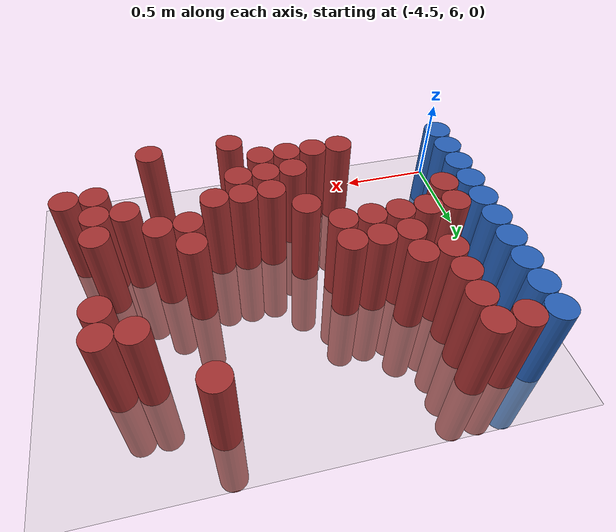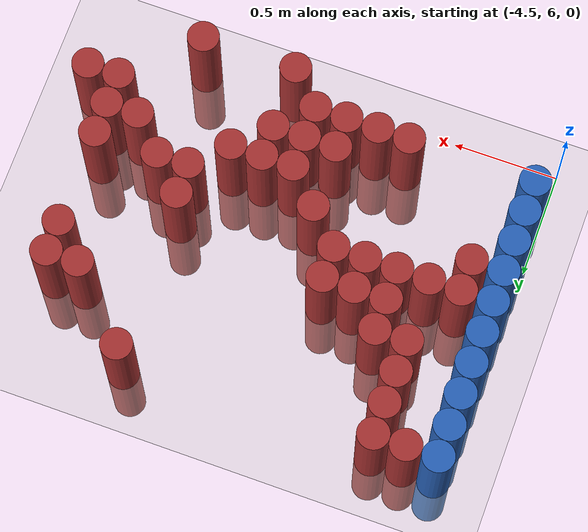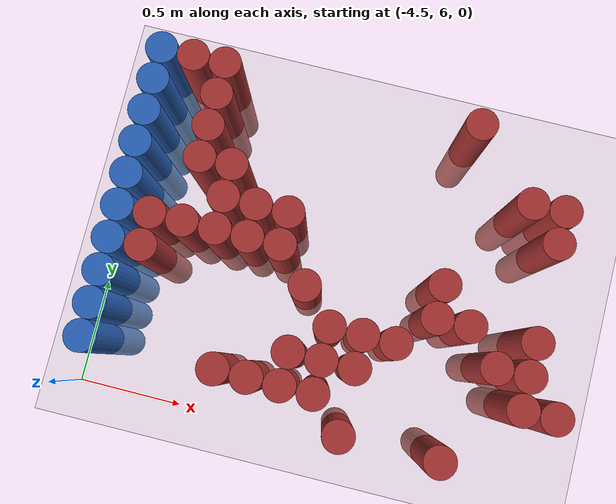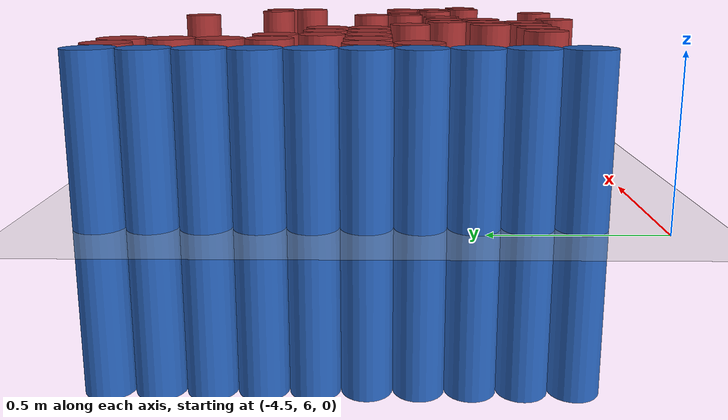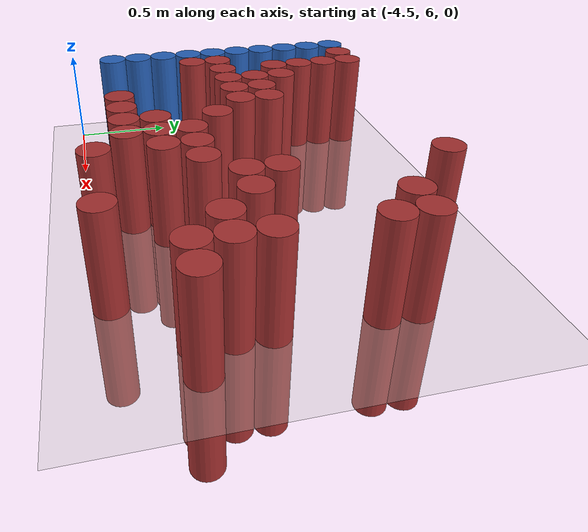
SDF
<sdf version="1.6">
 <world name="default">
  <model name="ground_plane">
   <static>1</static>
   <link name="link">
    <collision name="collision">
     <geometry><plane><normal>0 0 1</normal><size>100 100</size></plane></geometry>
     <surface><friction><ode><mu>100</mu><mu2>50</mu2></ode></friction></surface>
    </collision>
    <visual name="visual">
     <cast_shadows>0</cast_shadows>
     <geometry><plane><normal>0 0 1</normal><size>100 100</size></plane></geometry>
     <material>
      <script><uri>file://media/materials/scripts/gazebo.material</uri><name>Gazebo/Grey</name></script>
     </material>
    </visual>
   </link>
  </model>
  <model name="unit_cylinder_103">
   <static>1</static>
   <pose>-4.425000 6.225000 0.000000 0.000000 0.000000 0.000000</pose>
   <link name="link">
    <inertial>
     <mass>1</mass>
     <inertia><ixx>0.145833</ixx><ixy>0</ixy><ixz>0</ixz><iyy>0.145833</iyy><iyz>0</iyz><izz>0.125</izz></inertia>
    </inertial>
    <collision name="collision">
     <geometry><cylinder><radius>0.075000</radius><length>1</length></cylinder></geometry>
    </collision>
    <visual name="visual">
     <geometry><cylinder><radius>0.075000</radius><length>1</length></cylinder></geometry>
     <material>
      <ambient>0.152000 0.379000 0.720000 1</ambient>
      <diffuse>0.152000 0.379000 0.720000 1</diffuse>
     </material>
     <material>
      <script><name>Gazebo/Grey</name><uri>file://media/materials/scripts/gazebo.material</uri></script>
     </material>
    </visual>
   </link>
  </model>
  <model name="unit_cylinder_104">
   <static>1</static>
   <pose>-4.425000 6.375000 0.000000 0.000000 0.000000 0.000000</pose>
   <link name="link">
    <inertial>
     <mass>1</mass>
     <inertia><ixx>0.145833</ixx><ixy>0</ixy><ixz>0</ixz><iyy>0.145833</iyy><iyz>0</iyz><izz>0.125</izz></inertia>
    </inertial>
    <collision name="collision">
     <geometry><cylinder><radius>0.075000</radius><length>1</length></cylinder></geometry>
    </collision>
    <visual name="visual">
     <geometry><cylinder><radius>0.075000</radius><length>1</length></cylinder></geometry>
     <material>
      <ambient>0.152000 0.379000 0.720000 1</ambient>
      <diffuse>0.152000 0.379000 0.720000 1</diffuse>
     </material>
     <material>
      <script><name>Gazebo/Grey</name><uri>file://media/materials/scripts/gazebo.material</uri></script>
     </material>
    </visual>
   </link>
  </model>
  <model name="unit_cylinder_105">
   <static>1</static>
   <pose>-4.425000 6.525000 0.000000 0.000000 0.000000 0.000000</pose>
   <link name="link">
    <inertial>
     <mass>1</mass>
     <inertia><ixx>0.145833</ixx><ixy>0</ixy><ixz>0</ixz><iyy>0.145833</iyy><iyz>0</iyz><izz>0.125</izz></inertia>
    </inertial>
    <collision name="collision">
     <geometry><cylinder><radius>0.075000</radius><length>1</length></cylinder></geometry>
    </collision>
    <visual name="visual">
     <geometry><cylinder><radius>0.075000</radius><length>1</length></cylinder></geometry>
     <material>
      <ambient>0.152000 0.379000 0.720000 1</ambient>
      <diffuse>0.152000 0.379000 0.720000 1</diffuse>
     </material>
     <material>
      <script><name>Gazebo/Grey</name><uri>file://media/materials/scripts/gazebo.material</uri></script>
     </material>
    </visual>
   </link>
  </model>
  <model name="unit_cylinder_106">
   <static>1</static>
   <pose>-4.425000 6.675000 0.000000 0.000000 0.000000 0.000000</pose>
   <link name="link">
    <inertial>
     <mass>1</mass>
     <inertia><ixx>0.145833</ixx><ixy>0</ixy><ixz>0</ixz><iyy>0.145833</iyy><iyz>0</iyz><izz>0.125</izz></inertia>
    </inertial>
    <collision name="collision">
     <geometry><cylinder><radius>0.075000</radius><length>1</length></cylinder></geometry>
    </collision>
    <visual name="visual">
     <geometry><cylinder><radius>0.075000</radius><length>1</length></cylinder></geometry>
     <material>
      <ambient>0.152000 0.379000 0.720000 1</ambient>
      <diffuse>0.152000 0.379000 0.720000 1</diffuse>
     </material>
     <material>
      <script><name>Gazebo/Grey</name><uri>file://media/materials/scripts/gazebo.material</uri></script>
     </material>
    </visual>
   </link>
  </model>
  <model name="unit_cylinder_107">
   <static>1</static>
   <pose>-4.425000 6.825000 0.000000 0.000000 0.000000 0.000000</pose>
   <link name="link">
    <inertial>
     <mass>1</mass>
     <inertia><ixx>0.145833</ixx><ixy>0</ixy><ixz>0</ixz><iyy>0.145833</iyy><iyz>0</iyz><izz>0.125</izz></inertia>
    </inertial>
    <collision name="collision">
     <geometry><cylinder><radius>0.075000</radius><length>1</length></cylinder></geometry>
    </collision>
    <visual name="visual">
     <geometry><cylinder><radius>0.075000</radius><length>1</length></cylinder></geometry>
     <material>
      <ambient>0.152000 0.379000 0.720000 1</ambient>
      <diffuse>0.152000 0.379000 0.720000 1</diffuse>
     </material>
     <material>
      <script><name>Gazebo/Grey</name><uri>file://media/materials/scripts/gazebo.material</uri></script>
     </material>
    </visual>
   </link>
  </model>
  <model name="unit_cylinder_108">
   <static>1</static>
   <pose>-4.425000 6.975000 0.000000 0.000000 0.000000 0.000000</pose>
   <link name="link">
    <inertial>
     <mass>1</mass>
     <inertia><ixx>0.145833</ixx><ixy>0</ixy><ixz>0</ixz><iyy>0.145833</iyy><iyz>0</iyz><izz>0.125</izz></inertia>
    </inertial>
    <collision name="collision">
     <geometry><cylinder><radius>0.075000</radius><length>1</length></cylinder></geometry>
    </collision>
    <visual name="visual">
     <geometry><cylinder><radius>0.075000</radius><length>1</length></cylinder></geometry>
     <material>
      <ambient>0.152000 0.379000 0.720000 1</ambient>
      <diffuse>0.152000 0.379000 0.720000 1</diffuse>
     </material>
     <material>
      <script><name>Gazebo/Grey</name><uri>file://media/materials/scripts/gazebo.material</uri></script>
     </material>
    </visual>
   </link>
  </model>
  <model name="unit_cylinder_109">
   <static>1</static>
   <pose>-4.425000 7.125000 0.000000 0.000000 0.000000 0.000000</pose>
   <link name="link">
    <inertial>
     <mass>1</mass>
     <inertia><ixx>0.145833</ixx><ixy>0</ixy><ixz>0</ixz><iyy>0.145833</iyy><iyz>0</iyz><izz>0.125</izz></inertia>
    </inertial>
    <collision name="collision">
     <geometry><cylinder><radius>0.075000</radius><length>1</length></cylinder></geometry>
    </collision>
    <visual name="visual">
     <geometry><cylinder><radius>0.075000</radius><length>1</length></cylinder></geometry>
     <material>
      <ambient>0.152000 0.379000 0.720000 1</ambient>
      <diffuse>0.152000 0.379000 0.720000 1</diffuse>
     </material>
     <material>
      <script><name>Gazebo/Grey</name><uri>file://media/materials/scripts/gazebo.material</uri></script>
     </material>
    </visual>
   </link>
  </model>
  <model name="unit_cylinder_110">
   <static>1</static>
   <pose>-4.425000 7.275000 0.000000 0.000000 0.000000 0.000000</pose>
   <link name="link">
    <inertial>
     <mass>1</mass>
     <inertia><ixx>0.145833</ixx><ixy>0</ixy><ixz>0</ixz><iyy>0.145833</iyy><iyz>0</iyz><izz>0.125</izz></inertia>
    </inertial>
    <collision name="collision">
     <geometry><cylinder><radius>0.075000</radius><length>1</length></cylinder></geometry>
    </collision>
    <visual name="visual">
     <geometry><cylinder><radius>0.075000</radius><length>1</length></cylinder></geometry>
     <material>
      <ambient>0.152000 0.379000 0.720000 1</ambient>
      <diffuse>0.152000 0.379000 0.720000 1</diffuse>
     </material>
     <material>
      <script><name>Gazebo/Grey</name><uri>file://media/materials/scripts/gazebo.material</uri></script>
     </material>
    </visual>
   </link>
  </model>
  <model name="unit_cylinder_111">
   <static>1</static>
   <pose>-4.425000 7.425000 0.000000 0.000000 0.000000 0.000000</pose>
   <link name="link">
    <inertial>
     <mass>1</mass>
     <inertia><ixx>0.145833</ixx><ixy>0</ixy><ixz>0</ixz><iyy>0.145833</iyy><iyz>0</iyz><izz>0.125</izz></inertia>
    </inertial>
    <collision name="collision">
     <geometry><cylinder><radius>0.075000</radius><length>1</length></cylinder></geometry>
    </collision>
    <visual name="visual">
     <geometry><cylinder><radius>0.075000</radius><length>1</length></cylinder></geometry>
     <material>
      <ambient>0.152000 0.379000 0.720000 1</ambient>
      <diffuse>0.152000 0.379000 0.720000 1</diffuse>
     </material>
     <material>
      <script><name>Gazebo/Grey</name><uri>file://media/materials/scripts/gazebo.material</uri></script>
     </material>
    </visual>
   </link>
  </model>
  <model name="unit_cylinder_112">
   <static>1</static>
   <pose>-4.425000 7.575000 0.000000 0.000000 0.000000 0.000000</pose>
   <link name="link">
    <inertial>
     <mass>1</mass>
     <inertia><ixx>0.145833</ixx><ixy>0</ixy><ixz>0</ixz><iyy>0.145833</iyy><iyz>0</iyz><izz>0.125</izz></inertia>
    </inertial>
    <collision name="collision">
     <geometry><cylinder><radius>0.075000</radius><length>1</length></cylinder></geometry>
    </collision>
    <visual name="visual">
     <geometry><cylinder><radius>0.075000</radius><length>1</length></cylinder></geometry>
     <material>
      <ambient>0.152000 0.379000 0.720000 1</ambient>
      <diffuse>0.152000 0.379000 0.720000 1</diffuse>
     </material>
     <material>
      <script><name>Gazebo/Grey</name><uri>file://media/materials/scripts/gazebo.material</uri></script>
     </material>
    </visual>
   </link>
  </model>
  <model name="unit_cylinder_130">
   <static>1</static>
   <pose>-4.275000 6.675000 0.000000 0.000000 0.000000 0.000000</pose>
   <link name="link">
    <inertial>
     <mass>1</mass>
     <inertia><ixx>0.145833</ixx><ixy>0</ixy><ixz>0</ixz><iyy>0.145833</iyy><iyz>0</iyz><izz>0.125</izz></inertia>
    </inertial>
    <collision name="collision">
     <geometry><cylinder><radius>0.075000</radius><length>1</length></cylinder></geometry>
    </collision>
    <visual name="visual">
     <geometry><cylinder><radius>0.075000</radius><length>1</length></cylinder></geometry>
     <material>
      <ambient>0.648000 0.192000 0.192000 1</ambient>
      <diffuse>0.648000 0.192000 0.192000 1</diffuse>
     </material>
     <material>
      <script><name>Gazebo/Grey</name><uri>file://media/materials/scripts/gazebo.material</uri></script>
     </material>
    </visual>
   </link>
  </model>
  <model name="unit_cylinder_131">
   <static>1</static>
   <pose>-4.275000 6.825000 0.000000 0.000000 0.000000 0.000000</pose>
   <link name="link">
    <inertial>
     <mass>1</mass>
     <inertia><ixx>0.145833</ixx><ixy>0</ixy><ixz>0</ixz><iyy>0.145833</iyy><iyz>0</iyz><izz>0.125</izz></inertia>
    </inertial>
    <collision name="collision">
     <geometry><cylinder><radius>0.075000</radius><length>1</length></cylinder></geometry>
    </collision>
    <visual name="visual">
     <geometry><cylinder><radius>0.075000</radius><length>1</length></cylinder></geometry>
     <material>
      <ambient>0.648000 0.192000 0.192000 1</ambient>
      <diffuse>0.648000 0.192000 0.192000 1</diffuse>
     </material>
     <material>
      <script><name>Gazebo/Grey</name><uri>file://media/materials/scripts/gazebo.material</uri></script>
     </material>
    </visual>
   </link>
  </model>
  <model name="unit_cylinder_132">
   <static>1</static>
   <pose>-4.275000 7.575000 0.000000 0.000000 0.000000 0.000000</pose>
   <link name="link">
    <inertial>
     <mass>1</mass>
     <inertia><ixx>0.145833</ixx><ixy>0</ixy><ixz>0</ixz><iyy>0.145833</iyy><iyz>0</iyz><izz>0.125</izz></inertia>
    </inertial>
    <collision name="collision">
     <geometry><cylinder><radius>0.075000</radius><length>1</length></cylinder></geometry>
    </collision>
    <visual name="visual">
     <geometry><cylinder><radius>0.075000</radius><length>1</length></cylinder></geometry>
     <material>
      <ambient>0.648000 0.192000 0.192000 1</ambient>
      <diffuse>0.648000 0.192000 0.192000 1</diffuse>
     </material>
     <material>
      <script><name>Gazebo/Grey</name><uri>file://media/materials/scripts/gazebo.material</uri></script>
     </material>
    </visual>
   </link>
  </model>
  <model name="unit_cylinder_140">
   <static>1</static>
   <pose>-4.125000 6.825000 0.000000 0.000000 0.000000 0.000000</pose>
   <link name="link">
    <inertial>
     <mass>1</mass>
     <inertia><ixx>0.145833</ixx><ixy>0</ixy><ixz>0</ixz><iyy>0.145833</iyy><iyz>0</iyz><izz>0.125</izz></inertia>
    </inertial>
    <collision name="collision">
     <geometry><cylinder><radius>0.075000</radius><length>1</length></cylinder></geometry>
    </collision>
    <visual name="visual">
     <geometry><cylinder><radius>0.075000</radius><length>1</length></cylinder></geometry>
     <material>
      <ambient>0.648000 0.192000 0.192000 1</ambient>
      <diffuse>0.648000 0.192000 0.192000 1</diffuse>
     </material>
     <material>
      <script><name>Gazebo/Grey</name><uri>file://media/materials/scripts/gazebo.material</uri></script>
     </material>
    </visual>
   </link>
  </model>
  <model name="unit_cylinder_141">
   <static>1</static>
   <pose>-4.125000 7.125000 0.000000 0.000000 0.000000 0.000000</pose>
   <link name="link">
    <inertial>
     <mass>1</mass>
     <inertia><ixx>0.145833</ixx><ixy>0</ixy><ixz>0</ixz><iyy>0.145833</iyy><iyz>0</iyz><izz>0.125</izz></inertia>
    </inertial>
    <collision name="collision">
     <geometry><cylinder><radius>0.075000</radius><length>1</length></cylinder></geometry>
    </collision>
    <visual name="visual">
     <geometry><cylinder><radius>0.075000</radius><length>1</length></cylinder></geometry>
     <material>
      <ambient>0.648000 0.192000 0.192000 1</ambient>
      <diffuse>0.648000 0.192000 0.192000 1</diffuse>
     </material>
     <material>
      <script><name>Gazebo/Grey</name><uri>file://media/materials/scripts/gazebo.material</uri></script>
     </material>
    </visual>
   </link>
  </model>
  <model name="unit_cylinder_142">
   <static>1</static>
   <pose>-4.125000 7.275000 0.000000 0.000000 0.000000 0.000000</pose>
   <link name="link">
    <inertial>
     <mass>1</mass>
     <inertia><ixx>0.145833</ixx><ixy>0</ixy><ixz>0</ixz><iyy>0.145833</iyy><iyz>0</iyz><izz>0.125</izz></inertia>
    </inertial>
    <collision name="collision">
     <geometry><cylinder><radius>0.075000</radius><length>1</length></cylinder></geometry>
    </collision>
    <visual name="visual">
     <geometry><cylinder><radius>0.075000</radius><length>1</length></cylinder></geometry>
     <material>
      <ambient>0.648000 0.192000 0.192000 1</ambient>
      <diffuse>0.648000 0.192000 0.192000 1</diffuse>
     </material>
     <material>
      <script><name>Gazebo/Grey</name><uri>file://media/materials/scripts/gazebo.material</uri></script>
     </material>
    </visual>
   </link>
  </model>
  <model name="unit_cylinder_143">
   <static>1</static>
   <pose>-4.125000 7.425000 0.000000 0.000000 0.000000 0.000000</pose>
   <link name="link">
    <inertial>
     <mass>1</mass>
     <inertia><ixx>0.145833</ixx><ixy>0</ixy><ixz>0</ixz><iyy>0.145833</iyy><iyz>0</iyz><izz>0.125</izz></inertia>
    </inertial>
    <collision name="collision">
     <geometry><cylinder><radius>0.075000</radius><length>1</length></cylinder></geometry>
    </collision>
    <visual name="visual">
     <geometry><cylinder><radius>0.075000</radius><length>1</length></cylinder></geometry>
     <material>
      <ambient>0.648000 0.192000 0.192000 1</ambient>
      <diffuse>0.648000 0.192000 0.192000 1</diffuse>
     </material>
     <material>
      <script><name>Gazebo/Grey</name><uri>file://media/materials/scripts/gazebo.material</uri></script>
     </material>
    </visual>
   </link>
  </model>
  <model name="unit_cylinder_144">
   <static>1</static>
   <pose>-4.125000 7.575000 0.000000 0.000000 0.000000 0.000000</pose>
   <link name="link">
    <inertial>
     <mass>1</mass>
     <inertia><ixx>0.145833</ixx><ixy>0</ixy><ixz>0</ixz><iyy>0.145833</iyy><iyz>0</iyz><izz>0.125</izz></inertia>
    </inertial>
    <collision name="collision">
     <geometry><cylinder><radius>0.075000</radius><length>1</length></cylinder></geometry>
    </collision>
    <visual name="visual">
     <geometry><cylinder><radius>0.075000</radius><length>1</length></cylinder></geometry>
     <material>
      <ambient>0.648000 0.192000 0.192000 1</ambient>
      <diffuse>0.648000 0.192000 0.192000 1</diffuse>
     </material>
     <material>
      <script><name>Gazebo/Grey</name><uri>file://media/materials/scripts/gazebo.material</uri></script>
     </material>
    </visual>
   </link>
  </model>
  <model name="unit_cylinder_148">
   <static>1</static>
   <pose>-3.975000 6.825000 0.000000 0.000000 0.000000 0.000000</pose>
   <link name="link">
    <inertial>
     <mass>1</mass>
     <inertia><ixx>0.145833</ixx><ixy>0</ixy><ixz>0</ixz><iyy>0.145833</iyy><iyz>0</iyz><izz>0.125</izz></inertia>
    </inertial>
    <collision name="collision">
     <geometry><cylinder><radius>0.075000</radius><length>1</length></cylinder></geometry>
    </collision>
    <visual name="visual">
     <geometry><cylinder><radius>0.075000</radius><length>1</length></cylinder></geometry>
     <material>
      <ambient>0.648000 0.192000 0.192000 1</ambient>
      <diffuse>0.648000 0.192000 0.192000 1</diffuse>
     </material>
     <material>
      <script><name>Gazebo/Grey</name><uri>file://media/materials/scripts/gazebo.material</uri></script>
     </material>
    </visual>
   </link>
  </model>
  <model name="unit_cylinder_149">
   <static>1</static>
   <pose>-3.975000 6.975000 0.000000 0.000000 0.000000 0.000000</pose>
   <link name="link">
    <inertial>
     <mass>1</mass>
     <inertia><ixx>0.145833</ixx><ixy>0</ixy><ixz>0</ixz><iyy>0.145833</iyy><iyz>0</iyz><izz>0.125</izz></inertia>
    </inertial>
    <collision name="collision">
     <geometry><cylinder><radius>0.075000</radius><length>1</length></cylinder></geometry>
    </collision>
    <visual name="visual">
     <geometry><cylinder><radius>0.075000</radius><length>1</length></cylinder></geometry>
     <material>
      <ambient>0.648000 0.192000 0.192000 1</ambient>
      <diffuse>0.648000 0.192000 0.192000 1</diffuse>
     </material>
     <material>
      <script><name>Gazebo/Grey</name><uri>file://media/materials/scripts/gazebo.material</uri></script>
     </material>
    </visual>
   </link>
  </model>
  <model name="unit_cylinder_150">
   <static>1</static>
   <pose>-3.975000 7.125000 0.000000 0.000000 0.000000 0.000000</pose>
   <link name="link">
    <inertial>
     <mass>1</mass>
     <inertia><ixx>0.145833</ixx><ixy>0</ixy><ixz>0</ixz><iyy>0.145833</iyy><iyz>0</iyz><izz>0.125</izz></inertia>
    </inertial>
    <collision name="collision">
     <geometry><cylinder><radius>0.075000</radius><length>1</length></cylinder></geometry>
    </collision>
    <visual name="visual">
     <geometry><cylinder><radius>0.075000</radius><length>1</length></cylinder></geometry>
     <material>
      <ambient>0.648000 0.192000 0.192000 1</ambient>
      <diffuse>0.648000 0.192000 0.192000 1</diffuse>
     </material>
     <material>
      <script><name>Gazebo/Grey</name><uri>file://media/materials/scripts/gazebo.material</uri></script>
     </material>
    </visual>
   </link>
  </model>
  <model name="unit_cylinder_155">
   <static>1</static>
   <pose>-3.825000 6.225000 0.000000 0.000000 0.000000 0.000000</pose>
   <link name="link">
    <inertial>
     <mass>1</mass>
     <inertia><ixx>0.145833</ixx><ixy>0</ixy><ixz>0</ixz><iyy>0.145833</iyy><iyz>0</iyz><izz>0.125</izz></inertia>
    </inertial>
    <collision name="collision">
     <geometry><cylinder><radius>0.075000</radius><length>1</length></cylinder></geometry>
    </collision>
    <visual name="visual">
     <geometry><cylinder><radius>0.075000</radius><length>1</length></cylinder></geometry>
     <material>
      <ambient>0.648000 0.192000 0.192000 1</ambient>
      <diffuse>0.648000 0.192000 0.192000 1</diffuse>
     </material>
     <material>
      <script><name>Gazebo/Grey</name><uri>file://media/materials/scripts/gazebo.material</uri></script>
     </material>
    </visual>
   </link>
  </model>
  <model name="unit_cylinder_156">
   <static>1</static>
   <pose>-3.825000 6.825000 0.000000 0.000000 0.000000 0.000000</pose>
   <link name="link">
    <inertial>
     <mass>1</mass>
     <inertia><ixx>0.145833</ixx><ixy>0</ixy><ixz>0</ixz><iyy>0.145833</iyy><iyz>0</iyz><izz>0.125</izz></inertia>
    </inertial>
    <collision name="collision">
     <geometry><cylinder><radius>0.075000</radius><length>1</length></cylinder></geometry>
    </collision>
    <visual name="visual">
     <geometry><cylinder><radius>0.075000</radius><length>1</length></cylinder></geometry>
     <material>
      <ambient>0.648000 0.192000 0.192000 1</ambient>
      <diffuse>0.648000 0.192000 0.192000 1</diffuse>
     </material>
     <material>
      <script><name>Gazebo/Grey</name><uri>file://media/materials/scripts/gazebo.material</uri></script>
     </material>
    </visual>
   </link>
  </model>
  <model name="unit_cylinder_157">
   <static>1</static>
   <pose>-3.825000 6.975000 0.000000 0.000000 0.000000 0.000000</pose>
   <link name="link">
    <inertial>
     <mass>1</mass>
     <inertia><ixx>0.145833</ixx><ixy>0</ixy><ixz>0</ixz><iyy>0.145833</iyy><iyz>0</iyz><izz>0.125</izz></inertia>
    </inertial>
    <collision name="collision">
     <geometry><cylinder><radius>0.075000</radius><length>1</length></cylinder></geometry>
    </collision>
    <visual name="visual">
     <geometry><cylinder><radius>0.075000</radius><length>1</length></cylinder></geometry>
     <material>
      <ambient>0.648000 0.192000 0.192000 1</ambient>
      <diffuse>0.648000 0.192000 0.192000 1</diffuse>
     </material>
     <material>
      <script><name>Gazebo/Grey</name><uri>file://media/materials/scripts/gazebo.material</uri></script>
     </material>
    </visual>
   </link>
  </model>
  <model name="unit_cylinder_162">
   <static>1</static>
   <pose>-3.675000 6.225000 0.000000 0.000000 0.000000 0.000000</pose>
   <link name="link">
    <inertial>
     <mass>1</mass>
     <inertia><ixx>0.145833</ixx><ixy>0</ixy><ixz>0</ixz><iyy>0.145833</iyy><iyz>0</iyz><izz>0.125</izz></inertia>
    </inertial>
    <collision name="collision">
     <geometry><cylinder><radius>0.075000</radius><length>1</length></cylinder></geometry>
    </collision>
    <visual name="visual">
     <geometry><cylinder><radius>0.075000</radius><length>1</length></cylinder></geometry>
     <material>
      <ambient>0.648000 0.192000 0.192000 1</ambient>
      <diffuse>0.648000 0.192000 0.192000 1</diffuse>
     </material>
     <material>
      <script><name>Gazebo/Grey</name><uri>file://media/materials/scripts/gazebo.material</uri></script>
     </material>
    </visual>
   </link>
  </model>
  <model name="unit_cylinder_163">
   <static>1</static>
   <pose>-3.675000 6.825000 0.000000 0.000000 0.000000 0.000000</pose>
   <link name="link">
    <inertial>
     <mass>1</mass>
     <inertia><ixx>0.145833</ixx><ixy>0</ixy><ixz>0</ixz><iyy>0.145833</iyy><iyz>0</iyz><izz>0.125</izz></inertia>
    </inertial>
    <collision name="collision">
     <geometry><cylinder><radius>0.075000</radius><length>1</length></cylinder></geometry>
    </collision>
    <visual name="visual">
     <geometry><cylinder><radius>0.075000</radius><length>1</length></cylinder></geometry>
     <material>
      <ambient>0.648000 0.192000 0.192000 1</ambient>
      <diffuse>0.648000 0.192000 0.192000 1</diffuse>
     </material>
     <material>
      <script><name>Gazebo/Grey</name><uri>file://media/materials/scripts/gazebo.material</uri></script>
     </material>
    </visual>
   </link>
  </model>
  <model name="unit_cylinder_164">
   <static>1</static>
   <pose>-3.675000 6.975000 0.000000 0.000000 0.000000 0.000000</pose>
   <link name="link">
    <inertial>
     <mass>1</mass>
     <inertia><ixx>0.145833</ixx><ixy>0</ixy><ixz>0</ixz><iyy>0.145833</iyy><iyz>0</iyz><izz>0.125</izz></inertia>
    </inertial>
    <collision name="collision">
     <geometry><cylinder><radius>0.075000</radius><length>1</length></cylinder></geometry>
    </collision>
    <visual name="visual">
     <geometry><cylinder><radius>0.075000</radius><length>1</length></cylinder></geometry>
     <material>
      <ambient>0.648000 0.192000 0.192000 1</ambient>
      <diffuse>0.648000 0.192000 0.192000 1</diffuse>
     </material>
     <material>
      <script><name>Gazebo/Grey</name><uri>file://media/materials/scripts/gazebo.material</uri></script>
     </material>
    </visual>
   </link>
  </model>
  <model name="unit_cylinder_173">
   <static>1</static>
   <pose>-3.525000 6.225000 0.000000 0.000000 0.000000 0.000000</pose>
   <link name="link">
    <inertial>
     <mass>1</mass>
     <inertia><ixx>0.145833</ixx><ixy>0</ixy><ixz>0</ixz><iyy>0.145833</iyy><iyz>0</iyz><izz>0.125</izz></inertia>
    </inertial>
    <collision name="collision">
     <geometry><cylinder><radius>0.075000</radius><length>1</length></cylinder></geometry>
    </collision>
    <visual name="visual">
     <geometry><cylinder><radius>0.075000</radius><length>1</length></cylinder></geometry>
     <material>
      <ambient>0.648000 0.192000 0.192000 1</ambient>
      <diffuse>0.648000 0.192000 0.192000 1</diffuse>
     </material>
     <material>
      <script><name>Gazebo/Grey</name><uri>file://media/materials/scripts/gazebo.material</uri></script>
     </material>
    </visual>
   </link>
  </model>
  <model name="unit_cylinder_174">
   <static>1</static>
   <pose>-3.525000 6.375000 0.000000 0.000000 0.000000 0.000000</pose>
   <link name="link">
    <inertial>
     <mass>1</mass>
     <inertia><ixx>0.145833</ixx><ixy>0</ixy><ixz>0</ixz><iyy>0.145833</iyy><iyz>0</iyz><izz>0.125</izz></inertia>
    </inertial>
    <collision name="collision">
     <geometry><cylinder><radius>0.075000</radius><length>1</length></cylinder></geometry>
    </collision>
    <visual name="visual">
     <geometry><cylinder><radius>0.075000</radius><length>1</length></cylinder></geometry>
     <material>
      <ambient>0.648000 0.192000 0.192000 1</ambient>
      <diffuse>0.648000 0.192000 0.192000 1</diffuse>
     </material>
     <material>
      <script><name>Gazebo/Grey</name><uri>file://media/materials/scripts/gazebo.material</uri></script>
     </material>
    </visual>
   </link>
  </model>
  <model name="unit_cylinder_175">
   <static>1</static>
   <pose>-3.525000 6.675000 0.000000 0.000000 0.000000 0.000000</pose>
   <link name="link">
    <inertial>
     <mass>1</mass>
     <inertia><ixx>0.145833</ixx><ixy>0</ixy><ixz>0</ixz><iyy>0.145833</iyy><iyz>0</iyz><izz>0.125</izz></inertia>
    </inertial>
    <collision name="collision">
     <geometry><cylinder><radius>0.075000</radius><length>1</length></cylinder></geometry>
    </collision>
    <visual name="visual">
     <geometry><cylinder><radius>0.075000</radius><length>1</length></cylinder></geometry>
     <material>
      <ambient>0.648000 0.192000 0.192000 1</ambient>
      <diffuse>0.648000 0.192000 0.192000 1</diffuse>
     </material>
     <material>
      <script><name>Gazebo/Grey</name><uri>file://media/materials/scripts/gazebo.material</uri></script>
     </material>
    </visual>
   </link>
  </model>
  <model name="unit_cylinder_186">
   <static>1</static>
   <pose>-3.375000 6.225000 0.000000 0.000000 0.000000 0.000000</pose>
   <link name="link">
    <inertial>
     <mass>1</mass>
     <inertia><ixx>0.145833</ixx><ixy>0</ixy><ixz>0</ixz><iyy>0.145833</iyy><iyz>0</iyz><izz>0.125</izz></inertia>
    </inertial>
    <collision name="collision">
     <geometry><cylinder><radius>0.075000</radius><length>1</length></cylinder></geometry>
    </collision>
    <visual name="visual">
     <geometry><cylinder><radius>0.075000</radius><length>1</length></cylinder></geometry>
     <material>
      <ambient>0.648000 0.192000 0.192000 1</ambient>
      <diffuse>0.648000 0.192000 0.192000 1</diffuse>
     </material>
     <material>
      <script><name>Gazebo/Grey</name><uri>file://media/materials/scripts/gazebo.material</uri></script>
     </material>
    </visual>
   </link>
  </model>
  <model name="unit_cylinder_187">
   <static>1</static>
   <pose>-3.375000 6.375000 0.000000 0.000000 0.000000 0.000000</pose>
   <link name="link">
    <inertial>
     <mass>1</mass>
     <inertia><ixx>0.145833</ixx><ixy>0</ixy><ixz>0</ixz><iyy>0.145833</iyy><iyz>0</iyz><izz>0.125</izz></inertia>
    </inertial>
    <collision name="collision">
     <geometry><cylinder><radius>0.075000</radius><length>1</length></cylinder></geometry>
    </collision>
    <visual name="visual">
     <geometry><cylinder><radius>0.075000</radius><length>1</length></cylinder></geometry>
     <material>
      <ambient>0.648000 0.192000 0.192000 1</ambient>
      <diffuse>0.648000 0.192000 0.192000 1</diffuse>
     </material>
     <material>
      <script><name>Gazebo/Grey</name><uri>file://media/materials/scripts/gazebo.material</uri></script>
     </material>
    </visual>
   </link>
  </model>
  <model name="unit_cylinder_188">
   <static>1</static>
   <pose>-3.375000 6.525000 0.000000 0.000000 0.000000 0.000000</pose>
   <link name="link">
    <inertial>
     <mass>1</mass>
     <inertia><ixx>0.145833</ixx><ixy>0</ixy><ixz>0</ixz><iyy>0.145833</iyy><iyz>0</iyz><izz>0.125</izz></inertia>
    </inertial>
    <collision name="collision">
     <geometry><cylinder><radius>0.075000</radius><length>1</length></cylinder></geometry>
    </collision>
    <visual name="visual">
     <geometry><cylinder><radius>0.075000</radius><length>1</length></cylinder></geometry>
     <material>
      <ambient>0.648000 0.192000 0.192000 1</ambient>
      <diffuse>0.648000 0.192000 0.192000 1</diffuse>
     </material>
     <material>
      <script><name>Gazebo/Grey</name><uri>file://media/materials/scripts/gazebo.material</uri></script>
     </material>
    </visual>
   </link>
  </model>
  <model name="unit_cylinder_195">
   <static>1</static>
   <pose>-3.225000 6.075000 0.000000 0.000000 0.000000 0.000000</pose>
   <link name="link">
    <inertial>
     <mass>1</mass>
     <inertia><ixx>0.145833</ixx><ixy>0</ixy><ixz>0</ixz><iyy>0.145833</iyy><iyz>0</iyz><izz>0.125</izz></inertia>
    </inertial>
    <collision name="collision">
     <geometry><cylinder><radius>0.075000</radius><length>1</length></cylinder></geometry>
    </collision>
    <visual name="visual">
     <geometry><cylinder><radius>0.075000</radius><length>1</length></cylinder></geometry>
     <material>
      <ambient>0.648000 0.192000 0.192000 1</ambient>
      <diffuse>0.648000 0.192000 0.192000 1</diffuse>
     </material>
     <material>
      <script><name>Gazebo/Grey</name><uri>file://media/materials/scripts/gazebo.material</uri></script>
     </material>
    </visual>
   </link>
  </model>
  <model name="unit_cylinder_196">
   <static>1</static>
   <pose>-3.225000 6.375000 0.000000 0.000000 0.000000 0.000000</pose>
   <link name="link">
    <inertial>
     <mass>1</mass>
     <inertia><ixx>0.145833</ixx><ixy>0</ixy><ixz>0</ixz><iyy>0.145833</iyy><iyz>0</iyz><izz>0.125</izz></inertia>
    </inertial>
    <collision name="collision">
     <geometry><cylinder><radius>0.075000</radius><length>1</length></cylinder></geometry>
    </collision>
    <visual name="visual">
     <geometry><cylinder><radius>0.075000</radius><length>1</length></cylinder></geometry>
     <material>
      <ambient>0.648000 0.192000 0.192000 1</ambient>
      <diffuse>0.648000 0.192000 0.192000 1</diffuse>
     </material>
     <material>
      <script><name>Gazebo/Grey</name><uri>file://media/materials/scripts/gazebo.material</uri></script>
     </material>
    </visual>
   </link>
  </model>
  <model name="unit_cylinder_197">
   <static>1</static>
   <pose>-3.225000 6.525000 0.000000 0.000000 0.000000 0.000000</pose>
   <link name="link">
    <inertial>
     <mass>1</mass>
     <inertia><ixx>0.145833</ixx><ixy>0</ixy><ixz>0</ixz><iyy>0.145833</iyy><iyz>0</iyz><izz>0.125</izz></inertia>
    </inertial>
    <collision name="collision">
     <geometry><cylinder><radius>0.075000</radius><length>1</length></cylinder></geometry>
    </collision>
    <visual name="visual">
     <geometry><cylinder><radius>0.075000</radius><length>1</length></cylinder></geometry>
     <material>
      <ambient>0.648000 0.192000 0.192000 1</ambient>
      <diffuse>0.648000 0.192000 0.192000 1</diffuse>
     </material>
     <material>
      <script><name>Gazebo/Grey</name><uri>file://media/materials/scripts/gazebo.material</uri></script>
     </material>
    </visual>
   </link>
  </model>
  <model name="unit_cylinder_202">
   <static>1</static>
   <pose>-3.075000 6.525000 0.000000 0.000000 0.000000 0.000000</pose>
   <link name="link">
    <inertial>
     <mass>1</mass>
     <inertia><ixx>0.145833</ixx><ixy>0</ixy><ixz>0</ixz><iyy>0.145833</iyy><iyz>0</iyz><izz>0.125</izz></inertia>
    </inertial>
    <collision name="collision">
     <geometry><cylinder><radius>0.075000</radius><length>1</length></cylinder></geometry>
    </collision>
    <visual name="visual">
     <geometry><cylinder><radius>0.075000</radius><length>1</length></cylinder></geometry>
     <material>
      <ambient>0.648000 0.192000 0.192000 1</ambient>
      <diffuse>0.648000 0.192000 0.192000 1</diffuse>
     </material>
     <material>
      <script><name>Gazebo/Grey</name><uri>file://media/materials/scripts/gazebo.material</uri></script>
     </material>
    </visual>
   </link>
  </model>
  <model name="unit_cylinder_208">
   <static>1</static>
   <pose>-2.925000 6.675000 0.000000 0.000000 0.000000 0.000000</pose>
   <link name="link">
    <inertial>
     <mass>1</mass>
     <inertia><ixx>0.145833</ixx><ixy>0</ixy><ixz>0</ixz><iyy>0.145833</iyy><iyz>0</iyz><izz>0.125</izz></inertia>
    </inertial>
    <collision name="collision">
     <geometry><cylinder><radius>0.075000</radius><length>1</length></cylinder></geometry>
    </collision>
    <visual name="visual">
     <geometry><cylinder><radius>0.075000</radius><length>1</length></cylinder></geometry>
     <material>
      <ambient>0.648000 0.192000 0.192000 1</ambient>
      <diffuse>0.648000 0.192000 0.192000 1</diffuse>
     </material>
     <material>
      <script><name>Gazebo/Grey</name><uri>file://media/materials/scripts/gazebo.material</uri></script>
     </material>
    </visual>
   </link>
  </model>
  <model name="unit_cylinder_209">
   <static>1</static>
   <pose>-2.925000 6.825000 0.000000 0.000000 0.000000 0.000000</pose>
   <link name="link">
    <inertial>
     <mass>1</mass>
     <inertia><ixx>0.145833</ixx><ixy>0</ixy><ixz>0</ixz><iyy>0.145833</iyy><iyz>0</iyz><izz>0.125</izz></inertia>
    </inertial>
    <collision name="collision">
     <geometry><cylinder><radius>0.075000</radius><length>1</length></cylinder></geometry>
    </collision>
    <visual name="visual">
     <geometry><cylinder><radius>0.075000</radius><length>1</length></cylinder></geometry>
     <material>
      <ambient>0.648000 0.192000 0.192000 1</ambient>
      <diffuse>0.648000 0.192000 0.192000 1</diffuse>
     </material>
     <material>
      <script><name>Gazebo/Grey</name><uri>file://media/materials/scripts/gazebo.material</uri></script>
     </material>
    </visual>
   </link>
  </model>
  <model name="unit_cylinder_210">
   <static>1</static>
   <pose>-2.925000 7.575000 0.000000 0.000000 0.000000 0.000000</pose>
   <link name="link">
    <inertial>
     <mass>1</mass>
     <inertia><ixx>0.145833</ixx><ixy>0</ixy><ixz>0</ixz><iyy>0.145833</iyy><iyz>0</iyz><izz>0.125</izz></inertia>
    </inertial>
    <collision name="collision">
     <geometry><cylinder><radius>0.075000</radius><length>1</length></cylinder></geometry>
    </collision>
    <visual name="visual">
     <geometry><cylinder><radius>0.075000</radius><length>1</length></cylinder></geometry>
     <material>
      <ambient>0.648000 0.192000 0.192000 1</ambient>
      <diffuse>0.648000 0.192000 0.192000 1</diffuse>
     </material>
     <material>
      <script><name>Gazebo/Grey</name><uri>file://media/materials/scripts/gazebo.material</uri></script>
     </material>
    </visual>
   </link>
  </model>
  <model name="unit_cylinder_215">
   <static>1</static>
   <pose>-2.775000 6.075000 0.000000 0.000000 0.000000 0.000000</pose>
   <link name="link">
    <inertial>
     <mass>1</mass>
     <inertia><ixx>0.145833</ixx><ixy>0</ixy><ixz>0</ixz><iyy>0.145833</iyy><iyz>0</iyz><izz>0.125</izz></inertia>
    </inertial>
    <collision name="collision">
     <geometry><cylinder><radius>0.075000</radius><length>1</length></cylinder></geometry>
    </collision>
    <visual name="visual">
     <geometry><cylinder><radius>0.075000</radius><length>1</length></cylinder></geometry>
     <material>
      <ambient>0.648000 0.192000 0.192000 1</ambient>
      <diffuse>0.648000 0.192000 0.192000 1</diffuse>
     </material>
     <material>
      <script><name>Gazebo/Grey</name><uri>file://media/materials/scripts/gazebo.material</uri></script>
     </material>
    </visual>
   </link>
  </model>
  <model name="unit_cylinder_216">
   <static>1</static>
   <pose>-2.775000 6.675000 0.000000 0.000000 0.000000 0.000000</pose>
   <link name="link">
    <inertial>
     <mass>1</mass>
     <inertia><ixx>0.145833</ixx><ixy>0</ixy><ixz>0</ixz><iyy>0.145833</iyy><iyz>0</iyz><izz>0.125</izz></inertia>
    </inertial>
    <collision name="collision">
     <geometry><cylinder><radius>0.075000</radius><length>1</length></cylinder></geometry>
    </collision>
    <visual name="visual">
     <geometry><cylinder><radius>0.075000</radius><length>1</length></cylinder></geometry>
     <material>
      <ambient>0.648000 0.192000 0.192000 1</ambient>
      <diffuse>0.648000 0.192000 0.192000 1</diffuse>
     </material>
     <material>
      <script><name>Gazebo/Grey</name><uri>file://media/materials/scripts/gazebo.material</uri></script>
     </material>
    </visual>
   </link>
  </model>
  <model name="unit_cylinder_220">
   <static>1</static>
   <pose>-2.625000 6.525000 0.000000 0.000000 0.000000 0.000000</pose>
   <link name="link">
    <inertial>
     <mass>1</mass>
     <inertia><ixx>0.145833</ixx><ixy>0</ixy><ixz>0</ixz><iyy>0.145833</iyy><iyz>0</iyz><izz>0.125</izz></inertia>
    </inertial>
    <collision name="collision">
     <geometry><cylinder><radius>0.075000</radius><length>1</length></cylinder></geometry>
    </collision>
    <visual name="visual">
     <geometry><cylinder><radius>0.075000</radius><length>1</length></cylinder></geometry>
     <material>
      <ambient>0.648000 0.192000 0.192000 1</ambient>
      <diffuse>0.648000 0.192000 0.192000 1</diffuse>
     </material>
     <material>
      <script><name>Gazebo/Grey</name><uri>file://media/materials/scripts/gazebo.material</uri></script>
     </material>
    </visual>
   </link>
  </model>
  <model name="unit_cylinder_221">
   <static>1</static>
   <pose>-2.625000 7.275000 0.000000 0.000000 0.000000 0.000000</pose>
   <link name="link">
    <inertial>
     <mass>1</mass>
     <inertia><ixx>0.145833</ixx><ixy>0</ixy><ixz>0</ixz><iyy>0.145833</iyy><iyz>0</iyz><izz>0.125</izz></inertia>
    </inertial>
    <collision name="collision">
     <geometry><cylinder><radius>0.075000</radius><length>1</length></cylinder></geometry>
    </collision>
    <visual name="visual">
     <geometry><cylinder><radius>0.075000</radius><length>1</length></cylinder></geometry>
     <material>
      <ambient>0.648000 0.192000 0.192000 1</ambient>
      <diffuse>0.648000 0.192000 0.192000 1</diffuse>
     </material>
     <material>
      <script><name>Gazebo/Grey</name><uri>file://media/materials/scripts/gazebo.material</uri></script>
     </material>
    </visual>
   </link>
  </model>
  <model name="unit_cylinder_226">
   <static>1</static>
   <pose>-2.475000 6.375000 0.000000 0.000000 0.000000 0.000000</pose>
   <link name="link">
    <inertial>
     <mass>1</mass>
     <inertia><ixx>0.145833</ixx><ixy>0</ixy><ixz>0</ixz><iyy>0.145833</iyy><iyz>0</iyz><izz>0.125</izz></inertia>
    </inertial>
    <collision name="collision">
     <geometry><cylinder><radius>0.075000</radius><length>1</length></cylinder></geometry>
    </collision>
    <visual name="visual">
     <geometry><cylinder><radius>0.075000</radius><length>1</length></cylinder></geometry>
     <material>
      <ambient>0.648000 0.192000 0.192000 1</ambient>
      <diffuse>0.648000 0.192000 0.192000 1</diffuse>
     </material>
     <material>
      <script><name>Gazebo/Grey</name><uri>file://media/materials/scripts/gazebo.material</uri></script>
     </material>
    </visual>
   </link>
  </model>
  <model name="unit_cylinder_227">
   <static>1</static>
   <pose>-2.475000 6.525000 0.000000 0.000000 0.000000 0.000000</pose>
   <link name="link">
    <inertial>
     <mass>1</mass>
     <inertia><ixx>0.145833</ixx><ixy>0</ixy><ixz>0</ixz><iyy>0.145833</iyy><iyz>0</iyz><izz>0.125</izz></inertia>
    </inertial>
    <collision name="collision">
     <geometry><cylinder><radius>0.075000</radius><length>1</length></cylinder></geometry>
    </collision>
    <visual name="visual">
     <geometry><cylinder><radius>0.075000</radius><length>1</length></cylinder></geometry>
     <material>
      <ambient>0.648000 0.192000 0.192000 1</ambient>
      <diffuse>0.648000 0.192000 0.192000 1</diffuse>
     </material>
     <material>
      <script><name>Gazebo/Grey</name><uri>file://media/materials/scripts/gazebo.material</uri></script>
     </material>
    </visual>
   </link>
  </model>
  <model name="unit_cylinder_228">
   <static>1</static>
   <pose>-2.475000 6.675000 0.000000 0.000000 0.000000 0.000000</pose>
   <link name="link">
    <inertial>
     <mass>1</mass>
     <inertia><ixx>0.145833</ixx><ixy>0</ixy><ixz>0</ixz><iyy>0.145833</iyy><iyz>0</iyz><izz>0.125</izz></inertia>
    </inertial>
    <collision name="collision">
     <geometry><cylinder><radius>0.075000</radius><length>1</length></cylinder></geometry>
    </collision>
    <visual name="visual">
     <geometry><cylinder><radius>0.075000</radius><length>1</length></cylinder></geometry>
     <material>
      <ambient>0.648000 0.192000 0.192000 1</ambient>
      <diffuse>0.648000 0.192000 0.192000 1</diffuse>
     </material>
     <material>
      <script><name>Gazebo/Grey</name><uri>file://media/materials/scripts/gazebo.material</uri></script>
     </material>
    </visual>
   </link>
  </model>
  <model name="unit_cylinder_229">
   <static>1</static>
   <pose>-2.475000 7.125000 0.000000 0.000000 0.000000 0.000000</pose>
   <link name="link">
    <inertial>
     <mass>1</mass>
     <inertia><ixx>0.145833</ixx><ixy>0</ixy><ixz>0</ixz><iyy>0.145833</iyy><iyz>0</iyz><izz>0.125</izz></inertia>
    </inertial>
    <collision name="collision">
     <geometry><cylinder><radius>0.075000</radius><length>1</length></cylinder></geometry>
    </collision>
    <visual name="visual">
     <geometry><cylinder><radius>0.075000</radius><length>1</length></cylinder></geometry>
     <material>
      <ambient>0.648000 0.192000 0.192000 1</ambient>
      <diffuse>0.648000 0.192000 0.192000 1</diffuse>
     </material>
     <material>
      <script><name>Gazebo/Grey</name><uri>file://media/materials/scripts/gazebo.material</uri></script>
     </material>
    </visual>
   </link>
  </model>
  <model name="unit_cylinder_230">
   <static>1</static>
   <pose>-2.475000 7.275000 0.000000 0.000000 0.000000 0.000000</pose>
   <link name="link">
    <inertial>
     <mass>1</mass>
     <inertia><ixx>0.145833</ixx><ixy>0</ixy><ixz>0</ixz><iyy>0.145833</iyy><iyz>0</iyz><izz>0.125</izz></inertia>
    </inertial>
    <collision name="collision">
     <geometry><cylinder><radius>0.075000</radius><length>1</length></cylinder></geometry>
    </collision>
    <visual name="visual">
     <geometry><cylinder><radius>0.075000</radius><length>1</length></cylinder></geometry>
     <material>
      <ambient>0.648000 0.192000 0.192000 1</ambient>
      <diffuse>0.648000 0.192000 0.192000 1</diffuse>
     </material>
     <material>
      <script><name>Gazebo/Grey</name><uri>file://media/materials/scripts/gazebo.material</uri></script>
     </material>
    </visual>
   </link>
  </model>
  <model name="unit_cylinder_235">
   <static>1</static>
   <pose>-2.325000 6.375000 0.000000 0.000000 0.000000 0.000000</pose>
   <link name="link">
    <inertial>
     <mass>1</mass>
     <inertia><ixx>0.145833</ixx><ixy>0</ixy><ixz>0</ixz><iyy>0.145833</iyy><iyz>0</iyz><izz>0.125</izz></inertia>
    </inertial>
    <collision name="collision">
     <geometry><cylinder><radius>0.075000</radius><length>1</length></cylinder></geometry>
    </collision>
    <visual name="visual">
     <geometry><cylinder><radius>0.075000</radius><length>1</length></cylinder></geometry>
     <material>
      <ambient>0.648000 0.192000 0.192000 1</ambient>
      <diffuse>0.648000 0.192000 0.192000 1</diffuse>
     </material>
     <material>
      <script><name>Gazebo/Grey</name><uri>file://media/materials/scripts/gazebo.material</uri></script>
     </material>
    </visual>
   </link>
  </model>
 </world>
</sdf>
